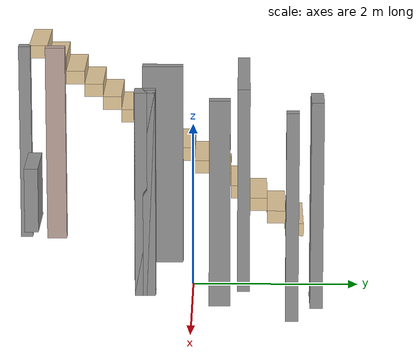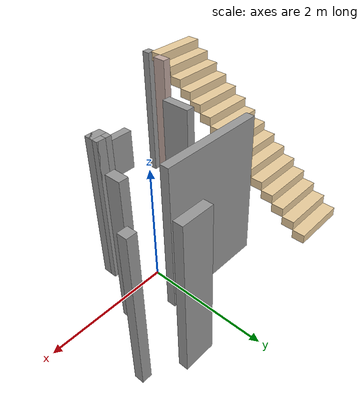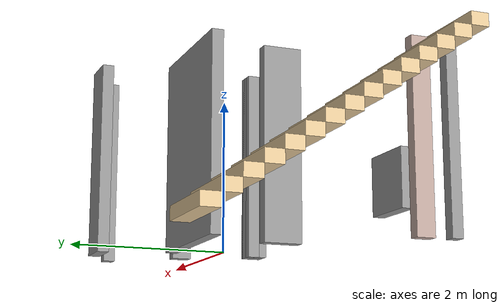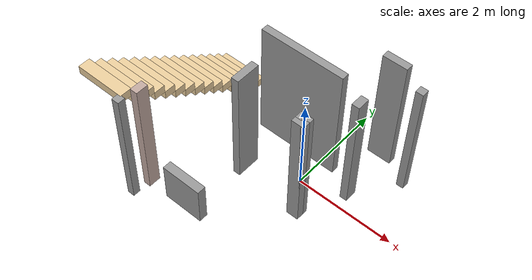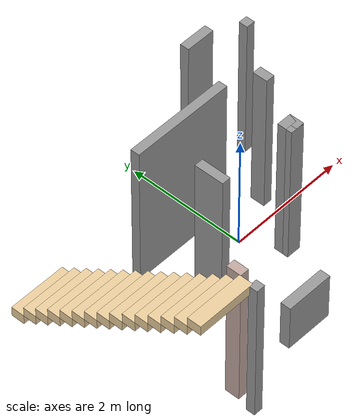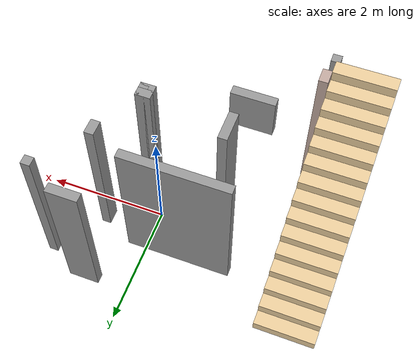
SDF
<?xml version='1.0'?>
<sdf version='1.7'>
  <model name='autonous1'>
    <pose>-0.805675 -0.350726 0 0 -0 0</pose>
    <link name='Stairs_0'>
      <visual name='Stairs_0_Visual_0'>
        <pose>-1.80265 1.618 0.083333 0 -0 0</pose>
        <geometry>
          <box>
            <size>1 0.233333 0.166667</size>
          </box>
        </geometry>
        <material>
          <script>
            <uri>file://media/materials/scripts/gazebo.material</uri>
            <name>Gazebo/Grey</name>
          </script>
          <ambient>0.921569 0.807843 0.615686 1</ambient>
        </material>
        <meta>
          <layer>0</layer>
        </meta>
      </visual>
      <collision name='Stairs_0_Collision_0'>
        <geometry>
          <box>
            <size>1 0.233333 0.166667</size>
          </box>
        </geometry>
        <pose>-1.80265 1.618 0.083333 0 -0 0</pose>
      </collision>
      <visual name='Stairs_0_Visual_1'>
        <pose>-1.80265 1.38466 0.25 0 -0 0</pose>
        <geometry>
          <box>
            <size>1 0.233333 0.166667</size>
          </box>
        </geometry>
        <material>
          <script>
            <uri>file://media/materials/scripts/gazebo.material</uri>
            <name>Gazebo/Grey</name>
          </script>
          <ambient>0.921569 0.807843 0.615686 1</ambient>
        </material>
        <meta>
          <layer>0</layer>
        </meta>
      </visual>
      <collision name='Stairs_0_Collision_1'>
        <geometry>
          <box>
            <size>1 0.233333 0.166667</size>
          </box>
        </geometry>
        <pose>-1.80265 1.38466 0.25 0 -0 0</pose>
      </collision>
      <visual name='Stairs_0_Visual_2'>
        <pose>-1.80265 1.15133 0.416667 0 -0 0</pose>
        <geometry>
          <box>
            <size>1 0.233333 0.166667</size>
          </box>
        </geometry>
        <material>
          <script>
            <uri>file://media/materials/scripts/gazebo.material</uri>
            <name>Gazebo/Grey</name>
          </script>
          <ambient>0.921569 0.807843 0.615686 1</ambient>
        </material>
        <meta>
          <layer>0</layer>
        </meta>
      </visual>
      <collision name='Stairs_0_Collision_2'>
        <geometry>
          <box>
            <size>1 0.233333 0.166667</size>
          </box>
        </geometry>
        <pose>-1.80265 1.15133 0.416667 0 -0 0</pose>
      </collision>
      <visual name='Stairs_0_Visual_3'>
        <pose>-1.80265 0.917997 0.583333 0 -0 0</pose>
        <geometry>
          <box>
            <size>1 0.233333 0.166667</size>
          </box>
        </geometry>
        <material>
          <script>
            <uri>file://media/materials/scripts/gazebo.material</uri>
            <name>Gazebo/Grey</name>
          </script>
          <ambient>0.921569 0.807843 0.615686 1</ambient>
        </material>
        <meta>
          <layer>0</layer>
        </meta>
      </visual>
      <collision name='Stairs_0_Collision_3'>
        <geometry>
          <box>
            <size>1 0.233333 0.166667</size>
          </box>
        </geometry>
        <pose>-1.80265 0.917997 0.583333 0 -0 0</pose>
      </collision>
      <visual name='Stairs_0_Visual_4'>
        <pose>-1.80265 0.684664 0.75 0 -0 0</pose>
        <geometry>
          <box>
            <size>1 0.233333 0.166667</size>
          </box>
        </geometry>
        <material>
          <script>
            <uri>file://media/materials/scripts/gazebo.material</uri>
            <name>Gazebo/Grey</name>
          </script>
          <ambient>0.921569 0.807843 0.615686 1</ambient>
        </material>
        <meta>
          <layer>0</layer>
        </meta>
      </visual>
      <collision name='Stairs_0_Collision_4'>
        <geometry>
          <box>
            <size>1 0.233333 0.166667</size>
          </box>
        </geometry>
        <pose>-1.80265 0.684664 0.75 0 -0 0</pose>
      </collision>
      <visual name='Stairs_0_Visual_5'>
        <pose>-1.80265 0.45133 0.916667 0 -0 0</pose>
        <geometry>
          <box>
            <size>1 0.233333 0.166667</size>
          </box>
        </geometry>
        <material>
          <script>
            <uri>file://media/materials/scripts/gazebo.material</uri>
            <name>Gazebo/Grey</name>
          </script>
          <ambient>0.921569 0.807843 0.615686 1</ambient>
        </material>
        <meta>
          <layer>0</layer>
        </meta>
      </visual>
      <collision name='Stairs_0_Collision_5'>
        <geometry>
          <box>
            <size>1 0.233333 0.166667</size>
          </box>
        </geometry>
        <pose>-1.80265 0.45133 0.916667 0 -0 0</pose>
      </collision>
      <visual name='Stairs_0_Visual_6'>
        <pose>-1.80265 0.217997 1.08333 0 -0 0</pose>
        <geometry>
          <box>
            <size>1 0.233333 0.166667</size>
          </box>
        </geometry>
        <material>
          <script>
            <uri>file://media/materials/scripts/gazebo.material</uri>
            <name>Gazebo/Grey</name>
          </script>
          <ambient>0.921569 0.807843 0.615686 1</ambient>
        </material>
        <meta>
          <layer>0</layer>
        </meta>
      </visual>
      <collision name='Stairs_0_Collision_6'>
        <geometry>
          <box>
            <size>1 0.233333 0.166667</size>
          </box>
        </geometry>
        <pose>-1.80265 0.217997 1.08333 0 -0 0</pose>
      </collision>
      <visual name='Stairs_0_Visual_7'>
        <pose>-1.80265 -0.015336 1.25 0 -0 0</pose>
        <geometry>
          <box>
            <size>1 0.233333 0.166667</size>
          </box>
        </geometry>
        <material>
          <script>
            <uri>file://media/materials/scripts/gazebo.material</uri>
            <name>Gazebo/Grey</name>
          </script>
          <ambient>0.921569 0.807843 0.615686 1</ambient>
        </material>
        <meta>
          <layer>0</layer>
        </meta>
      </visual>
      <collision name='Stairs_0_Collision_7'>
        <geometry>
          <box>
            <size>1 0.233333 0.166667</size>
          </box>
        </geometry>
        <pose>-1.80265 -0.015336 1.25 0 -0 0</pose>
      </collision>
      <visual name='Stairs_0_Visual_8'>
        <pose>-1.80265 -0.24867 1.41667 0 -0 0</pose>
        <geometry>
          <box>
            <size>1 0.233333 0.166667</size>
          </box>
        </geometry>
        <material>
          <script>
            <uri>file://media/materials/scripts/gazebo.material</uri>
            <name>Gazebo/Grey</name>
          </script>
          <ambient>0.921569 0.807843 0.615686 1</ambient>
        </material>
        <meta>
          <layer>0</layer>
        </meta>
      </visual>
      <collision name='Stairs_0_Collision_8'>
        <geometry>
          <box>
            <size>1 0.233333 0.166667</size>
          </box>
        </geometry>
        <pose>-1.80265 -0.24867 1.41667 0 -0 0</pose>
      </collision>
      <visual name='Stairs_0_Visual_9'>
        <pose>-1.80265 -0.482003 1.58333 0 -0 0</pose>
        <geometry>
          <box>
            <size>1 0.233333 0.166667</size>
          </box>
        </geometry>
        <material>
          <script>
            <uri>file://media/materials/scripts/gazebo.material</uri>
            <name>Gazebo/Grey</name>
          </script>
          <ambient>0.921569 0.807843 0.615686 1</ambient>
        </material>
        <meta>
          <layer>0</layer>
        </meta>
      </visual>
      <collision name='Stairs_0_Collision_9'>
        <geometry>
          <box>
            <size>1 0.233333 0.166667</size>
          </box>
        </geometry>
        <pose>-1.80265 -0.482003 1.58333 0 -0 0</pose>
      </collision>
      <visual name='Stairs_0_Visual_10'>
        <pose>-1.80265 -0.715336 1.75 0 -0 0</pose>
        <geometry>
          <box>
            <size>1 0.233333 0.166667</size>
          </box>
        </geometry>
        <material>
          <script>
            <uri>file://media/materials/scripts/gazebo.material</uri>
            <name>Gazebo/Grey</name>
          </script>
          <ambient>0.921569 0.807843 0.615686 1</ambient>
        </material>
        <meta>
          <layer>0</layer>
        </meta>
      </visual>
      <collision name='Stairs_0_Collision_10'>
        <geometry>
          <box>
            <size>1 0.233333 0.166667</size>
          </box>
        </geometry>
        <pose>-1.80265 -0.715336 1.75 0 -0 0</pose>
      </collision>
      <visual name='Stairs_0_Visual_11'>
        <pose>-1.80265 -0.94867 1.91667 0 -0 0</pose>
        <geometry>
          <box>
            <size>1 0.233333 0.166667</size>
          </box>
        </geometry>
        <material>
          <script>
            <uri>file://media/materials/scripts/gazebo.material</uri>
            <name>Gazebo/Grey</name>
          </script>
          <ambient>0.921569 0.807843 0.615686 1</ambient>
        </material>
        <meta>
          <layer>0</layer>
        </meta>
      </visual>
      <collision name='Stairs_0_Collision_11'>
        <geometry>
          <box>
            <size>1 0.233333 0.166667</size>
          </box>
        </geometry>
        <pose>-1.80265 -0.94867 1.91667 0 -0 0</pose>
      </collision>
      <visual name='Stairs_0_Visual_12'>
        <pose>-1.80265 -1.182 2.08333 0 -0 0</pose>
        <geometry>
          <box>
            <size>1 0.233333 0.166667</size>
          </box>
        </geometry>
        <material>
          <script>
            <uri>file://media/materials/scripts/gazebo.material</uri>
            <name>Gazebo/Grey</name>
          </script>
          <ambient>0.921569 0.807843 0.615686 1</ambient>
        </material>
        <meta>
          <layer>0</layer>
        </meta>
      </visual>
      <collision name='Stairs_0_Collision_12'>
        <geometry>
          <box>
            <size>1 0.233333 0.166667</size>
          </box>
        </geometry>
        <pose>-1.80265 -1.182 2.08333 0 -0 0</pose>
      </collision>
      <visual name='Stairs_0_Visual_13'>
        <pose>-1.80265 -1.41534 2.25 0 -0 0</pose>
        <geometry>
          <box>
            <size>1 0.233333 0.166667</size>
          </box>
        </geometry>
        <material>
          <script>
            <uri>file://media/materials/scripts/gazebo.material</uri>
            <name>Gazebo/Grey</name>
          </script>
          <ambient>0.921569 0.807843 0.615686 1</ambient>
        </material>
        <meta>
          <layer>0</layer>
        </meta>
      </visual>
      <collision name='Stairs_0_Collision_13'>
        <geometry>
          <box>
            <size>1 0.233333 0.166667</size>
          </box>
        </geometry>
        <pose>-1.80265 -1.41534 2.25 0 -0 0</pose>
      </collision>
      <visual name='Stairs_0_Visual_14'>
        <pose>-1.80265 -1.64867 2.41667 0 -0 0</pose>
        <geometry>
          <box>
            <size>1 0.233333 0.166667</size>
          </box>
        </geometry>
        <material>
          <script>
            <uri>file://media/materials/scripts/gazebo.material</uri>
            <name>Gazebo/Grey</name>
          </script>
          <ambient>0.921569 0.807843 0.615686 1</ambient>
        </material>
        <meta>
          <layer>0</layer>
        </meta>
      </visual>
      <collision name='Stairs_0_Collision_14'>
        <geometry>
          <box>
            <size>1 0.233333 0.166667</size>
          </box>
        </geometry>
        <pose>-1.80265 -1.64867 2.41667 0 -0 0</pose>
      </collision>
    </link>
    <link name='Wall_25'>
      <collision name='Wall_25_Collision'>
        <geometry>
          <box>
            <size>0.15 0.15 2.5</size>
          </box>
        </geometry>
        <pose>0 0 1.25 0 -0 0</pose>
      </collision>
      <visual name='Wall_25_Visual'>
        <pose>0 0 1.25 0 -0 0</pose>
        <geometry>
          <box>
            <size>0.15 0.15 2.5</size>
          </box>
        </geometry>
        <material>
          <script>
            <uri>file://media/materials/scripts/gazebo.material</uri>
            <name>Gazebo/Grey</name>
          </script>
          <ambient>1 1 1 1</ambient>
        </material>
        <meta>
          <layer>0</layer>
        </meta>
      </visual>
      <pose>-1.29373 -1.82209 0 0 -0 0</pose>
    </link>
    <link name='Wall_27'>
      <collision name='Wall_27_Collision'>
        <geometry>
          <box>
            <size>0.25 0.15 2.5</size>
          </box>
        </geometry>
        <pose>0 0 1.25 0 -0 0</pose>
      </collision>
      <visual name='Wall_27_Visual'>
        <pose>0 0 1.25 0 -0 0</pose>
        <geometry>
          <box>
            <size>0.25 0.15 2.5</size>
          </box>
        </geometry>
        <material>
          <script>
            <uri>file://media/materials/scripts/gazebo.material</uri>
            <name>Gazebo/Grey</name>
          </script>
          <ambient>0.760784 0.662745 0.627451 1</ambient>
        </material>
        <meta>
          <layer>0</layer>
        </meta>
      </visual>
      <pose>-1.22903 -1.43061 0 0 -0 1.5708</pose>
    </link>
    <link name='Wall_30'>
      <collision name='Wall_30_Collision'>
        <geometry>
          <box>
            <size>1.75 0.15 2.5</size>
          </box>
        </geometry>
        <pose>0 0 1.25 0 -0 0</pose>
      </collision>
      <visual name='Wall_30_Visual'>
        <pose>0 0 1.25 0 -0 0</pose>
        <geometry>
          <box>
            <size>1.75 0.15 2.5</size>
          </box>
        </geometry>
        <material>
          <script>
            <uri>file://media/materials/scripts/gazebo.material</uri>
            <name>Gazebo/Grey</name>
          </script>
          <ambient>1 1 1 1</ambient>
        </material>
        <meta>
          <layer>0</layer>
        </meta>
      </visual>
      <pose>0.245462 0.960089 0 0 -0 0</pose>
    </link>
    <link name='Wall_32'>
      <collision name='Wall_32_Collision'>
        <geometry>
          <box>
            <size>0.25 0.15 2.5</size>
          </box>
        </geometry>
        <pose>0 0 1.25 0 -0 0</pose>
      </collision>
      <visual name='Wall_32_Visual'>
        <pose>0 0 1.25 0 -0 0</pose>
        <geometry>
          <box>
            <size>0.25 0.15 2.5</size>
          </box>
        </geometry>
        <material>
          <script>
            <uri>file://media/materials/scripts/gazebo.material</uri>
            <name>Gazebo/Grey</name>
          </script>
          <ambient>1 1 1 1</ambient>
        </material>
        <meta>
          <layer>0</layer>
        </meta>
      </visual>
      <pose>1.18119 -0.166565 0 0 -0 0</pose>
    </link>
    <link name='Wall_33'>
      <collision name='Wall_33_Collision'>
        <geometry>
          <box>
            <size>0.25 0.15 2.5</size>
          </box>
        </geometry>
        <pose>0 0 1.25 0 -0 0</pose>
      </collision>
      <visual name='Wall_33_Visual'>
        <pose>0 0 1.25 0 -0 0</pose>
        <geometry>
          <box>
            <size>0.25 0.15 2.5</size>
          </box>
        </geometry>
        <material>
          <script>
            <uri>file://media/materials/scripts/gazebo.material</uri>
            <name>Gazebo/Grey</name>
          </script>
          <ambient>1 1 1 1</ambient>
        </material>
        <meta>
          <layer>0</layer>
        </meta>
      </visual>
      <pose>1.23119 -0.216565 0 0 -0 -1.5708</pose>
    </link>
    <link name='Wall_34'>
      <collision name='Wall_34_Collision'>
        <geometry>
          <box>
            <size>0.25 0.15 2.5</size>
          </box>
        </geometry>
        <pose>0 0 1.25 0 -0 0</pose>
      </collision>
      <visual name='Wall_34_Visual'>
        <pose>0 0 1.25 0 -0 0</pose>
        <geometry>
          <box>
            <size>0.25 0.15 2.5</size>
          </box>
        </geometry>
        <material>
          <script>
            <uri>file://media/materials/scripts/gazebo.material</uri>
            <name>Gazebo/Grey</name>
          </script>
          <ambient>1 1 1 1</ambient>
        </material>
        <meta>
          <layer>0</layer>
        </meta>
      </visual>
      <pose>1.18119 -0.266565 0 0 -0 3.14159</pose>
    </link>
    <link name='Wall_39'>
      <collision name='Wall_39_Collision'>
        <geometry>
          <box>
            <size>0.5 0.15 2.5</size>
          </box>
        </geometry>
        <pose>0 0 1.25 0 -0 0</pose>
      </collision>
      <visual name='Wall_39_Visual'>
        <pose>0 0 1.25 0 -0 0</pose>
        <geometry>
          <box>
            <size>0.5 0.15 2.5</size>
          </box>
        </geometry>
        <material>
          <script>
            <uri>file://media/materials/scripts/gazebo.material</uri>
            <name>Gazebo/Grey</name>
          </script>
          <ambient>1 1 1 1</ambient>
        </material>
        <meta>
          <layer>0</layer>
        </meta>
      </visual>
      <pose>1.53303 1.82209 0 0 -0 0</pose>
    </link>
    <link name='Wall_41'>
      <collision name='Wall_41_Collision'>
        <geometry>
          <box>
            <size>0.15 0.15 2.5</size>
          </box>
        </geometry>
        <pose>0 0 1.25 0 -0 0</pose>
      </collision>
      <visual name='Wall_41_Visual'>
        <pose>0 0 1.25 0 -0 0</pose>
        <geometry>
          <box>
            <size>0.15 0.15 2.5</size>
          </box>
        </geometry>
        <material>
          <script>
            <uri>file://media/materials/scripts/gazebo.material</uri>
            <name>Gazebo/Grey</name>
          </script>
          <ambient>1 1 1 1</ambient>
        </material>
        <meta>
          <layer>0</layer>
        </meta>
      </visual>
      <pose>2.22765 1.52209 0 0 -0 0</pose>
    </link>
    <link name='Wall_45'>
      <collision name='Wall_45_Collision'>
        <geometry>
          <box>
            <size>0.25 0.15 2.5</size>
          </box>
        </geometry>
        <pose>0 0 1.25 0 -0 0</pose>
      </collision>
      <visual name='Wall_45_Visual'>
        <pose>0 0 1.25 0 -0 0</pose>
        <geometry>
          <box>
            <size>0.25 0.15 2.5</size>
          </box>
        </geometry>
        <material>
          <script>
            <uri>file://media/materials/scripts/gazebo.material</uri>
            <name>Gazebo/Grey</name>
          </script>
          <ambient>1 1 1 1</ambient>
        </material>
        <meta>
          <layer>0</layer>
        </meta>
      </visual>
      <pose>1.63024 0.675684 0 0 -0 -1.5708</pose>
    </link>
    <link name='Wall_48'>
      <collision name='Wall_48_Collision'>
        <geometry>
          <box>
            <size>0.5 0.15 2.5</size>
          </box>
        </geometry>
        <pose>0 0 1.25 0 -0 0</pose>
      </collision>
      <visual name='Wall_48_Visual'>
        <pose>0 0 1.25 0 -0 0</pose>
        <geometry>
          <box>
            <size>0.5 0.15 2.5</size>
          </box>
        </geometry>
        <material>
          <script>
            <uri>file://media/materials/scripts/gazebo.material</uri>
            <name>Gazebo/Grey</name>
          </script>
          <ambient>1 1 1 1</ambient>
        </material>
        <meta>
          <layer>0</layer>
        </meta>
      </visual>
      <pose>-0.1845 -0.039108 0 0 -0 -1.5708</pose>
    </link>
    <link name='Window_0'>
      <collision name='Window_0_Collision'>
        <geometry>
          <box>
            <size>0.8 0.17 0.8</size>
          </box>
        </geometry>
        <pose>0 0 0.4 0 -0 0</pose>
      </collision>
      <visual name='Window_0_Visual'>
        <pose>0 0 0.4 0 -0 0</pose>
        <geometry>
          <box>
            <size>0.8 0.17 0.8</size>
          </box>
        </geometry>
        <material>
          <script>
            <uri>file://media/materials/scripts/gazebo.material</uri>
            <name>Gazebo/Grey</name>
          </script>
        </material>
      </visual>
      <pose>-0.101325 -1.64861 0.5 0 -0 0</pose>
    </link>
    <static>1</static>
  </model>
</sdf>
